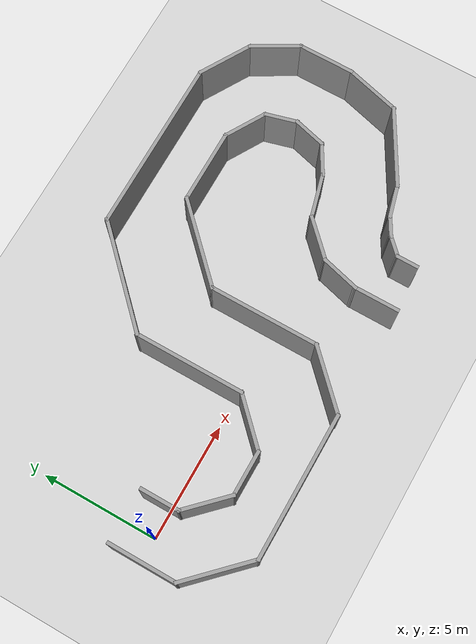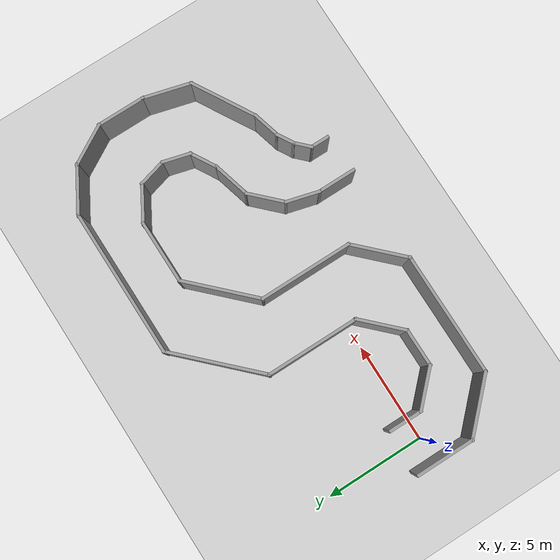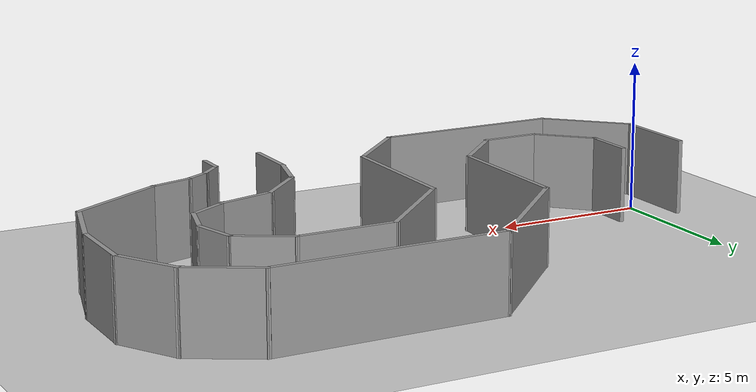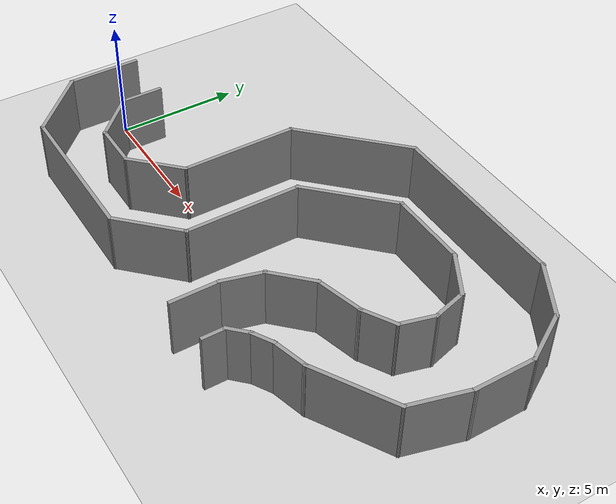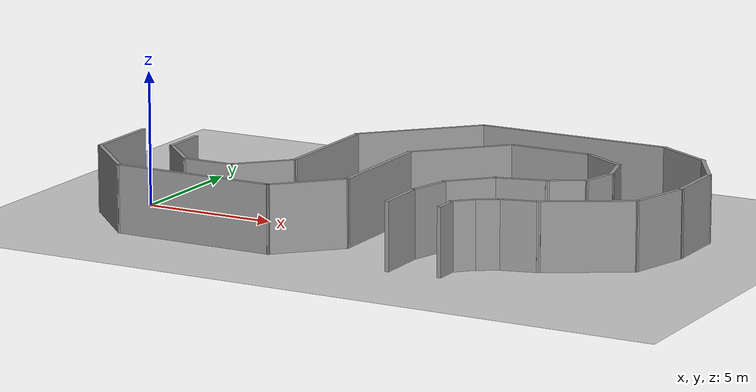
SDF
<sdf version="1.7">
 <world name="default">
  <light name="sun" type="directional">
   <pose>0 0 10 0 -0 0</pose>
   <diffuse>0.8 0.8 0.8 1</diffuse>
   <specular>0.2 0.2 0.2 1</specular>
   <attenuation>
    <range>1000</range>
    <constant>0.9</constant>
    <linear>0.01</linear>
    <quadratic>0.001</quadratic>
   </attenuation>
   <direction>-0.5 0.1 -0.9</direction>
   <spot><inner_angle>0</inner_angle><outer_angle>0</outer_angle><falloff>0</falloff></spot>
  </light>
  <model name="ground_plane">
   <static>1</static>
   <link name="link">
    <collision name="collision">
     <geometry><plane><normal>0 0 1</normal><size>100 100</size></plane></geometry>
     <surface>
      <contact><collide_bitmask>65535</collide_bitmask></contact>
      <friction><ode><mu>100</mu><mu2>50</mu2></ode></friction>
     </surface>
    </collision>
    <visual name="visual">
     <cast_shadows>0</cast_shadows>
     <geometry><plane><normal>0 0 1</normal><size>100 100</size></plane></geometry>
     <material>
      <script><uri>file://media/materials/scripts/gazebo.material</uri><name>Gazebo/Grey</name></script>
     </material>
    </visual>
   </link>
  </model>
  <gravity>0 0 -9.8</gravity>
  <magnetic_field>6e-06 2.3e-05 -4.2e-05</magnetic_field>
  <atmosphere type="adiabatic"/>
  <physics type="ode">
   <max_step_size>0.001</max_step_size>
   <real_time_factor>1</real_time_factor>
   <real_time_update_rate>1000</real_time_update_rate>
  </physics>
  <scene><ambient>0.4 0.4 0.4 1</ambient><background>0.7 0.7 0.7 1</background><shadows>1</shadows></scene>
  <audio><device>default</device></audio>
  <spherical_coordinates>
   <surface_model>EARTH_WGS84</surface_model>
   <latitude_deg>0</latitude_deg>
   <longitude_deg>0</longitude_deg>
   <elevation>0</elevation>
   <heading_deg>0</heading_deg>
  </spherical_coordinates>
  <model name="maze">
   <pose>9.51192 1.9331 -0 0 -0 0</pose>
   <link name="Wall_15">
    <collision name="Wall_15_Collision">
     <geometry><box><size>3 0.15 2.5</size></box></geometry>
     <pose>0 0 1.25 0 -0 0</pose>
    </collision>
    <visual name="Wall_15_Visual">
     <pose>0 0 1.25 0 -0 0</pose>
     <geometry><box><size>3 0.15 2.5</size></box></geometry>
     <material>
      <script><uri>file://media/materials/scripts/gazebo.material</uri><name>Gazebo/Grey</name></script>
      <ambient>1 1 1 1</ambient>
     </material>
     <meta><layer>0</layer></meta>
    </visual>
    <pose>-10.5687 -2.18176 0 0 -0 -1.5708</pose>
   </link>
   <link name="Wall_16">
    <collision name="Wall_16_Collision">
     <geometry><box><size>3.25 0.15 2.5</size></box></geometry>
     <pose>0 0 1.25 0 -0 0</pose>
    </collision>
    <visual name="Wall_16_Visual">
     <pose>0 0 1.25 0 -0 0</pose>
     <geometry><box><size>3.25 0.15 2.5</size></box></geometry>
     <material>
      <script><uri>file://media/materials/scripts/gazebo.material</uri><name>Gazebo/Grey</name></script>
      <ambient>1 1 1 1</ambient>
     </material>
     <meta><layer>0</layer></meta>
    </visual>
    <pose>-9.47273 -4.70278 0 0 -0 -0.785398</pose>
   </link>
   <link name="Wall_17">
    <collision name="Wall_17_Collision">
     <geometry><box><size>6.25 0.15 2.5</size></box></geometry>
     <pose>0 0 1.25 0 -0 0</pose>
    </collision>
    <visual name="Wall_17_Visual">
     <pose>0 0 1.25 0 -0 0</pose>
     <geometry><box><size>6.25 0.15 2.5</size></box></geometry>
     <material>
      <script><uri>file://media/materials/scripts/gazebo.material</uri><name>Gazebo/Grey</name></script>
      <ambient>1 1 1 1</ambient>
     </material>
     <meta><layer>0</layer></meta>
    </visual>
    <pose>-5.32671 -5.79879 0 0 -0 0</pose>
   </link>
   <link name="Wall_18">
    <collision name="Wall_18_Collision">
     <geometry><box><size>3 0.15 2.5</size></box></geometry>
     <pose>0 0 1.25 0 -0 0</pose>
    </collision>
    <visual name="Wall_18_Visual">
     <pose>0 0 1.25 0 -0 0</pose>
     <geometry><box><size>3 0.15 2.5</size></box></geometry>
     <material>
      <script><uri>file://media/materials/scripts/gazebo.material</uri><name>Gazebo/Grey</name></script>
      <ambient>1 1 1 1</ambient>
     </material>
     <meta><layer>0</layer></meta>
    </visual>
    <pose>-1.26909 -4.79117 0 0 -0 0.785398</pose>
   </link>
   <link name="Wall_19">
    <collision name="Wall_19_Collision">
     <geometry><box><size>4.75 0.15 2.5</size></box></geometry>
     <pose>0 0 1.25 0 -0 0</pose>
    </collision>
    <visual name="Wall_19_Visual">
     <pose>0 0 1.25 0 -0 0</pose>
     <geometry><box><size>4.75 0.15 2.5</size></box></geometry>
     <material>
      <script><uri>file://media/materials/scripts/gazebo.material</uri><name>Gazebo/Grey</name></script>
      <ambient>1 1 1 1</ambient>
     </material>
     <meta><layer>0</layer></meta>
    </visual>
    <pose>-0.261459 -1.48354 0 0 -0 1.5708</pose>
   </link>
   <link name="Wall_20">
    <collision name="Wall_20_Collision">
     <geometry><box><size>4 0.15 2.5</size></box></geometry>
     <pose>0 0 1.25 0 -0 0</pose>
    </collision>
    <visual name="Wall_20_Visual">
     <pose>0 0 1.25 0 -0 0</pose>
     <geometry><box><size>4 0.15 2.5</size></box></geometry>
     <material>
      <script><uri>file://media/materials/scripts/gazebo.material</uri><name>Gazebo/Grey</name></script>
      <ambient>1 1 1 1</ambient>
     </material>
     <meta><layer>0</layer></meta>
    </visual>
    <pose>1.09972 2.17764 0 0 -0 0.785398</pose>
   </link>
   <link name="Wall_21">
    <collision name="Wall_21_Collision">
     <geometry><box><size>3.25 0.15 2.5</size></box></geometry>
     <pose>0 0 1.25 0 -0 0</pose>
    </collision>
    <visual name="Wall_21_Visual">
     <pose>0 0 1.25 0 -0 0</pose>
     <geometry><box><size>3.25 0.15 2.5</size></box></geometry>
     <material>
      <script><uri>file://media/materials/scripts/gazebo.material</uri><name>Gazebo/Grey</name></script>
      <ambient>1 1 1 1</ambient>
     </material>
     <meta><layer>0</layer></meta>
    </visual>
    <pose>4.0109 3.53882 0 0 -0 0</pose>
   </link>
   <link name="Wall_22">
    <collision name="Wall_22_Collision">
     <geometry><box><size>2 0.15 2.5</size></box></geometry>
     <pose>0 0 1.25 0 -0 0</pose>
    </collision>
    <visual name="Wall_22_Visual">
     <pose>0 0 1.25 0 -0 0</pose>
     <geometry><box><size>2 0.15 2.5</size></box></geometry>
     <material>
      <script><uri>file://media/materials/scripts/gazebo.material</uri><name>Gazebo/Grey</name></script>
      <ambient>1 1 1 1</ambient>
     </material>
     <meta><layer>0</layer></meta>
    </visual>
    <pose>6.36198 3.07632 0 0 -0 -0.523599</pose>
   </link>
   <link name="Wall_23">
    <collision name="Wall_23_Collision">
     <geometry><box><size>1.5 0.15 2.5</size></box></geometry>
     <pose>0 0 1.25 0 -0 0</pose>
    </collision>
    <visual name="Wall_23_Visual">
     <pose>0 0 1.25 0 -0 0</pose>
     <geometry><box><size>1.5 0.15 2.5</size></box></geometry>
     <material>
      <script><uri>file://media/materials/scripts/gazebo.material</uri><name>Gazebo/Grey</name></script>
      <ambient>1 1 1 1</ambient>
     </material>
     <meta><layer>0</layer></meta>
    </visual>
    <pose>7.33775 1.96182 0 0 -0 -1.309</pose>
   </link>
   <link name="Wall_24">
    <collision name="Wall_24_Collision">
     <geometry><box><size>1.5 0.15 2.5</size></box></geometry>
     <pose>0 0 1.25 0 -0 0</pose>
    </collision>
    <visual name="Wall_24_Visual">
     <pose>0 0 1.25 0 -0 0</pose>
     <geometry><box><size>1.5 0.15 2.5</size></box></geometry>
     <material>
      <script><uri>file://media/materials/scripts/gazebo.material</uri><name>Gazebo/Grey</name></script>
      <ambient>1 1 1 1</ambient>
     </material>
     <meta><layer>0</layer></meta>
    </visual>
    <pose>7.33775 0.657821 0 0 -0 -1.8326</pose>
   </link>
   <link name="Wall_25">
    <collision name="Wall_25_Collision">
     <geometry><box><size>1.5 0.15 2.5</size></box></geometry>
     <pose>0 0 1.25 0 -0 0</pose>
    </collision>
    <visual name="Wall_25_Visual">
     <pose>0 0 1.25 0 -0 0</pose>
     <geometry><box><size>1.5 0.15 2.5</size></box></geometry>
     <material>
      <script><uri>file://media/materials/scripts/gazebo.material</uri><name>Gazebo/Grey</name></script>
      <ambient>1 1 1 1</ambient>
     </material>
     <meta><layer>0</layer></meta>
    </visual>
    <pose>6.57848 -0.331679 0 0 -0 -2.61799</pose>
   </link>
   <link name="Wall_26">
    <collision name="Wall_26_Collision">
     <geometry><box><size>2 0.15 2.5</size></box></geometry>
     <pose>0 0 1.25 0 -0 0</pose>
    </collision>
    <visual name="Wall_26_Visual">
     <pose>0 0 1.25 0 -0 0</pose>
     <geometry><box><size>2 0.15 2.5</size></box></geometry>
     <material>
      <script><uri>file://media/materials/scripts/gazebo.material</uri><name>Gazebo/Grey</name></script>
      <ambient>1 1 1 1</ambient>
     </material>
     <meta><layer>0</layer></meta>
    </visual>
    <pose>5.10043 -0.908586 0 0 -0 -2.87979</pose>
   </link>
   <link name="Wall_27">
    <collision name="Wall_27_Collision">
     <geometry><box><size>2 0.15 2.5</size></box></geometry>
     <pose>0 0 1.25 0 -0 0</pose>
    </collision>
    <visual name="Wall_27_Visual">
     <pose>0 0 1.25 0 -0 0</pose>
     <geometry><box><size>2 0.15 2.5</size></box></geometry>
     <material>
      <script><uri>file://media/materials/scripts/gazebo.material</uri><name>Gazebo/Grey</name></script>
      <ambient>1 1 1 1</ambient>
     </material>
     <meta><layer>0</layer></meta>
    </visual>
    <pose>3.55288 -1.80207 0 0 -0 -2.35619</pose>
   </link>
   <link name="Wall_28">
    <collision name="Wall_28_Collision">
     <geometry><box><size>1.75 0.15 2.5</size></box></geometry>
     <pose>0 0 1.25 0 -0 0</pose>
    </collision>
    <visual name="Wall_28_Visual">
     <pose>0 0 1.25 0 -0 0</pose>
     <geometry><box><size>1.75 0.15 2.5</size></box></geometry>
     <material>
      <script><uri>file://media/materials/scripts/gazebo.material</uri><name>Gazebo/Grey</name></script>
      <ambient>1 1 1 1</ambient>
     </material>
     <meta><layer>0</layer></meta>
    </visual>
    <pose>2.69175 -3.22888 0 0 -0 -1.8326</pose>
   </link>
   <link name="Wall_29">
    <collision name="Wall_29_Collision">
     <geometry><box><size>2 0.15 2.5</size></box></geometry>
     <pose>0 0 1.25 0 -0 0</pose>
    </collision>
    <visual name="Wall_29_Visual">
     <pose>0 0 1.25 0 -0 0</pose>
     <geometry><box><size>2 0.15 2.5</size></box></geometry>
     <material>
      <script><uri>file://media/materials/scripts/gazebo.material</uri><name>Gazebo/Grey</name></script>
      <ambient>1 1 1 1</ambient>
     </material>
     <meta><layer>0</layer></meta>
    </visual>
    <pose>2.48469 -4.92662 0 0 -0 -1.5708</pose>
   </link>
   <link name="Wall_32">
    <collision name="Wall_32_Collision">
     <geometry><box><size>1.75 0.15 2.5</size></box></geometry>
     <pose>0 0 1.25 0 -0 0</pose>
    </collision>
    <visual name="Wall_32_Visual">
     <pose>0 0 1.25 0 -0 0</pose>
     <geometry><box><size>1.75 0.15 2.5</size></box></geometry>
     <material>
      <script><uri>file://media/materials/scripts/gazebo.material</uri><name>Gazebo/Grey</name></script>
      <ambient>1 1 1 1</ambient>
     </material>
     <meta><layer>0</layer></meta>
    </visual>
    <pose>-8.28889 -1.58569 0 0 -0 -1.5708</pose>
   </link>
   <link name="Wall_33">
    <collision name="Wall_33_Collision">
     <geometry><box><size>2.25 0.15 2.5</size></box></geometry>
     <pose>0 0 1.25 0 -0 0</pose>
    </collision>
    <visual name="Wall_33_Visual">
     <pose>0 0 1.25 0 -0 0</pose>
     <geometry><box><size>2.25 0.15 2.5</size></box></geometry>
     <material>
      <script><uri>file://media/materials/scripts/gazebo.material</uri><name>Gazebo/Grey</name></script>
      <ambient>1 1 1 1</ambient>
     </material>
     <meta><layer>0</layer></meta>
    </visual>
    <pose>-7.54643 -3.12815 0 0 -0 -0.785398</pose>
   </link>
   <link name="Wall_34">
    <collision name="Wall_34_Collision">
     <geometry><box><size>2 0.15 2.5</size></box></geometry>
     <pose>0 0 1.25 0 -0 0</pose>
    </collision>
    <visual name="Wall_34_Visual">
     <pose>0 0 1.25 0 -0 0</pose>
     <geometry><box><size>2 0.15 2.5</size></box></geometry>
     <material>
      <script><uri>file://media/materials/scripts/gazebo.material</uri><name>Gazebo/Grey</name></script>
      <ambient>1 1 1 1</ambient>
     </material>
     <meta><layer>0</layer></meta>
    </visual>
    <pose>-5.87897 -3.87061 0 0 -0 0</pose>
   </link>
   <link name="Wall_35">
    <collision name="Wall_35_Collision">
     <geometry><box><size>2.5 0.15 2.5</size></box></geometry>
     <pose>0 0 1.25 0 -0 0</pose>
    </collision>
    <visual name="Wall_35_Visual">
     <pose>0 0 1.25 0 -0 0</pose>
     <geometry><box><size>2.5 0.15 2.5</size></box></geometry>
     <material>
      <script><uri>file://media/materials/scripts/gazebo.material</uri><name>Gazebo/Grey</name></script>
      <ambient>1 1 1 1</ambient>
     </material>
     <meta><layer>0</layer></meta>
    </visual>
    <pose>-4.12312 -3.03976 0 0 -0 0.785398</pose>
   </link>
   <link name="Wall_36">
    <collision name="Wall_36_Collision">
     <geometry><box><size>4.75 0.15 2.5</size></box></geometry>
     <pose>0 0 1.25 0 -0 0</pose>
    </collision>
    <visual name="Wall_36_Visual">
     <pose>0 0 1.25 0 -0 0</pose>
     <geometry><box><size>4.75 0.15 2.5</size></box></geometry>
     <material>
      <script><uri>file://media/materials/scripts/gazebo.material</uri><name>Gazebo/Grey</name></script>
      <ambient>1 1 1 1</ambient>
     </material>
     <meta><layer>0</layer></meta>
    </visual>
    <pose>-3.29227 0.091088 0 0 -0 1.5708</pose>
   </link>
   <link name="Wall_37">
    <collision name="Wall_37_Collision">
     <geometry><box><size>5 0.15 2.5</size></box></geometry>
     <pose>0 0 1.25 0 -0 0</pose>
    </collision>
    <visual name="Wall_37_Visual">
     <pose>0 0 1.25 0 -0 0</pose>
     <geometry><box><size>5 0.15 2.5</size></box></geometry>
     <material>
      <script><uri>file://media/materials/scripts/gazebo.material</uri><name>Gazebo/Grey</name></script>
      <ambient>1 1 1 1</ambient>
     </material>
     <meta><layer>0</layer></meta>
    </visual>
    <pose>-1.57753 4.10582 0 0 -0 0.785398</pose>
   </link>
   <link name="Wall_38">
    <collision name="Wall_38_Collision">
     <geometry><box><size>7.5 0.15 2.5</size></box></geometry>
     <pose>0 0 1.25 0 -0 0</pose>
    </collision>
    <visual name="Wall_38_Visual">
     <pose>0 0 1.25 0 -0 0</pose>
     <geometry><box><size>7.5 0.15 2.5</size></box></geometry>
     <material>
      <script><uri>file://media/materials/scripts/gazebo.material</uri><name>Gazebo/Grey</name></script>
      <ambient>1 1 1 1</ambient>
     </material>
     <meta><layer>0</layer></meta>
    </visual>
    <pose>3.8122 5.82056 0 0 -0 0</pose>
   </link>
   <link name="Wall_39">
    <collision name="Wall_39_Collision">
     <geometry><box><size>2.5 0.15 2.5</size></box></geometry>
     <pose>0 0 1.25 0 -0 0</pose>
    </collision>
    <visual name="Wall_39_Visual">
     <pose>0 0 1.25 0 -0 0</pose>
     <geometry><box><size>2.5 0.15 2.5</size></box></geometry>
     <material>
      <script><uri>file://media/materials/scripts/gazebo.material</uri><name>Gazebo/Grey</name></script>
      <ambient>1 1 1 1</ambient>
     </material>
     <meta><layer>0</layer></meta>
    </visual>
    <pose>8.50478 5.23306 0 0 -0 -0.523599</pose>
   </link>
   <link name="Wall_40">
    <collision name="Wall_40_Collision">
     <geometry><box><size>2.25 0.15 2.5</size></box></geometry>
     <pose>0 0 1.25 0 -0 0</pose>
    </collision>
    <visual name="Wall_40_Visual">
     <pose>0 0 1.25 0 -0 0</pose>
     <geometry><box><size>2.25 0.15 2.5</size></box></geometry>
     <material>
      <script><uri>file://media/materials/scripts/gazebo.material</uri><name>Gazebo/Grey</name></script>
      <ambient>1 1 1 1</ambient>
     </material>
     <meta><layer>0</layer></meta>
    </visual>
    <pose>10.0474 3.73623 0 0 -0 -1.0472</pose>
   </link>
   <link name="Wall_41">
    <collision name="Wall_41_Collision">
     <geometry><box><size>2.5 0.15 2.5</size></box></geometry>
     <pose>0 0 1.25 0 -0 0</pose>
    </collision>
    <visual name="Wall_41_Visual">
     <pose>0 0 1.25 0 -0 0</pose>
     <geometry><box><size>2.5 0.15 2.5</size></box></geometry>
     <material>
      <script><uri>file://media/materials/scripts/gazebo.material</uri><name>Gazebo/Grey</name></script>
      <ambient>1 1 1 1</ambient>
     </material>
     <meta><layer>0</layer></meta>
    </visual>
    <pose>10.5724 1.6519 0 0 -0 -1.5708</pose>
   </link>
   <link name="Wall_42">
    <collision name="Wall_42_Collision">
     <geometry><box><size>2.5 0.15 2.5</size></box></geometry>
     <pose>0 0 1.25 0 -0 0</pose>
    </collision>
    <visual name="Wall_42_Visual">
     <pose>0 0 1.25 0 -0 0</pose>
     <geometry><box><size>2.5 0.15 2.5</size></box></geometry>
     <material>
      <script><uri>file://media/materials/scripts/gazebo.material</uri><name>Gazebo/Grey</name></script>
      <ambient>1 1 1 1</ambient>
     </material>
     <meta><layer>0</layer></meta>
    </visual>
    <pose>10.2682 -0.65806 0 0 -0 -1.8326</pose>
   </link>
   <link name="Wall_43">
    <collision name="Wall_43_Collision">
     <geometry><box><size>3.5 0.15 2.5</size></box></geometry>
     <pose>0 0 1.25 0 -0 0</pose>
    </collision>
    <visual name="Wall_43_Visual">
     <pose>0 0 1.25 0 -0 0</pose>
     <geometry><box><size>3.5 0.15 2.5</size></box></geometry>
     <material>
      <script><uri>file://media/materials/scripts/gazebo.material</uri><name>Gazebo/Grey</name></script>
      <ambient>1 1 1 1</ambient>
     </material>
     <meta><layer>0</layer></meta>
    </visual>
    <pose>8.51354 -2.63052 0 0 -0 -2.61799</pose>
   </link>
   <link name="Wall_44">
    <collision name="Wall_44_Collision">
     <geometry><box><size>1.5 0.15 2.5</size></box></geometry>
     <pose>0 0 1.25 0 -0 0</pose>
    </collision>
    <visual name="Wall_44_Visual">
     <pose>0 0 1.25 0 -0 0</pose>
     <geometry><box><size>1.5 0.15 2.5</size></box></geometry>
     <material>
      <script><uri>file://media/materials/scripts/gazebo.material</uri><name>Gazebo/Grey</name></script>
      <ambient>1 1 1 1</ambient>
     </material>
     <meta><layer>0</layer></meta>
    </visual>
    <pose>6.41095 -3.64273 0 0 -0 -2.87979</pose>
   </link>
   <link name="Wall_45">
    <collision name="Wall_45_Collision">
     <geometry><box><size>1 0.15 2.5</size></box></geometry>
     <pose>0 0 1.25 0 -0 0</pose>
    </collision>
    <visual name="Wall_45_Visual">
     <pose>0 0 1.25 0 -0 0</pose>
     <geometry><box><size>1 0.15 2.5</size></box></geometry>
     <material>
      <script><uri>file://media/materials/scripts/gazebo.material</uri><name>Gazebo/Grey</name></script>
      <ambient>1 1 1 1</ambient>
     </material>
     <meta><layer>0</layer></meta>
    </visual>
    <pose>5.39089 -4.02993 0 0 -0 -2.61799</pose>
   </link>
   <link name="Wall_46">
    <collision name="Wall_46_Collision">
     <geometry><box><size>1 0.15 2.5</size></box></geometry>
     <pose>0 0 1.25 0 -0 0</pose>
    </collision>
    <visual name="Wall_46_Visual">
     <pose>0 0 1.25 0 -0 0</pose>
     <geometry><box><size>1 0.15 2.5</size></box></geometry>
     <material>
      <script><uri>file://media/materials/scripts/gazebo.material</uri><name>Gazebo/Grey</name></script>
      <ambient>1 1 1 1</ambient>
     </material>
     <meta><layer>0</layer></meta>
    </visual>
    <pose>4.72231 -4.54295 0 0 -0 -2.35619</pose>
   </link>
   <link name="Wall_47">
    <collision name="Wall_47_Collision">
     <geometry><box><size>1 0.15 2.5</size></box></geometry>
     <pose>0 0 1.25 0 -0 0</pose>
    </collision>
    <visual name="Wall_47_Visual">
     <pose>0 0 1.25 0 -0 0</pose>
     <geometry><box><size>1 0.15 2.5</size></box></geometry>
     <material>
      <script><uri>file://media/materials/scripts/gazebo.material</uri><name>Gazebo/Grey</name></script>
      <ambient>1 1 1 1</ambient>
     </material>
     <meta><layer>0</layer></meta>
    </visual>
    <pose>4.42179 -5.26847 0 0 -0 -1.5708</pose>
   </link>
   <static>1</static>
  </model>
 </world>
</sdf>
